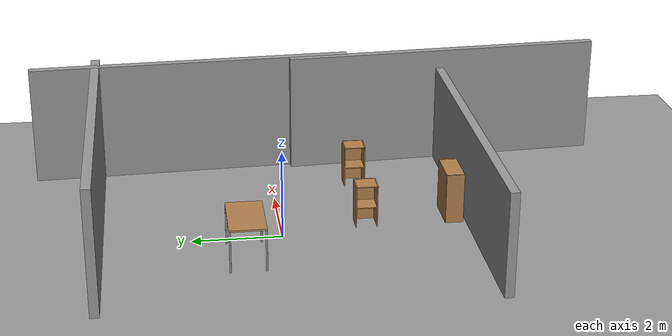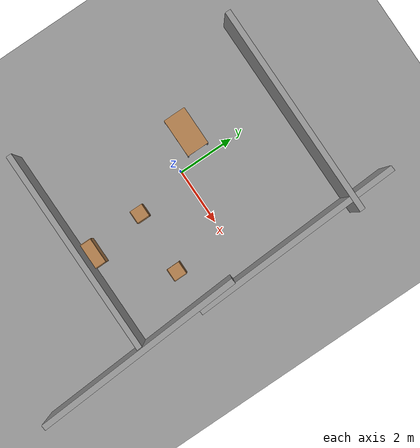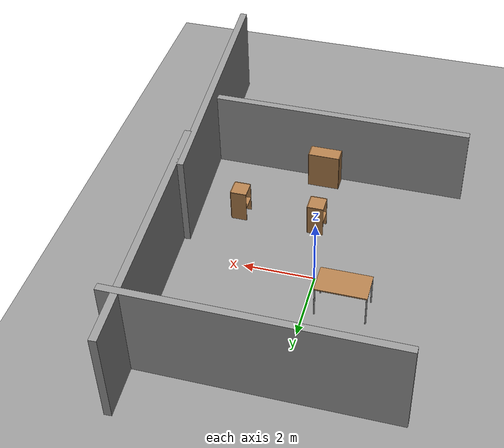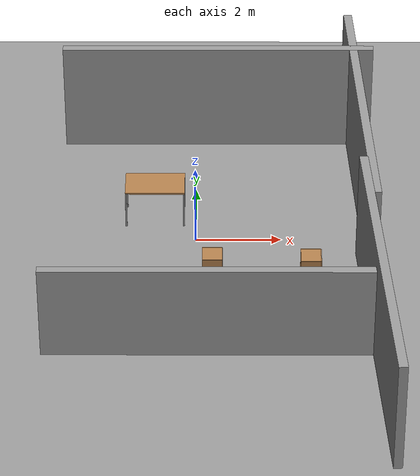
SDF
<sdf version="1.6">
 <world name="default">
  <model name="ground_plane">
   <static>1</static>
   <link name="link">
    <collision name="collision">
     <geometry><plane><normal>0 0 1</normal><size>100 100</size></plane></geometry>
     <surface><friction><ode><mu>100</mu><mu2>50</mu2></ode></friction></surface>
    </collision>
    <visual name="visual">
     <cast_shadows>0</cast_shadows>
     <geometry><plane><normal>0 0 1</normal><size>100 100</size></plane></geometry>
     <material>
      <script><uri>file://media/materials/scripts/gazebo.material</uri><name>Gazebo/Grey</name></script>
     </material>
    </visual>
   </link>
  </model>
  <model name="cabinet_0">
   <static>1</static>
   <link name="cabinet_bottom_plate">
    <inertial>
     <pose>0 0 -1 0 -0 0</pose>
     <inertia><ixx>2.05</ixx><ixy>0</ixy><ixz>0</ixz><iyy>2.05</iyy><iyz>0</iyz><izz>2.05</izz></inertia>
     <mass>25</mass>
    </inertial>
    <collision name="cabinet_bottom_plate_geom">
     <pose>0 0 0.01 0 -0 0</pose>
     <geometry><box><size>0.45 0.45 0.02</size></box></geometry>
    </collision>
    <visual name="cabinet_bottom_plate_geom_visual">
     <pose>0 0 0.01 0 -0 0</pose>
     <geometry><box><size>0.45 0.45 0.02</size></box></geometry>
     <material>
      <script><uri>file://media/materials/scripts/gazebo.material</uri><name>Gazebo/Wood</name></script>
     </material>
    </visual>
    <collision name="cabinet_bottom_plate_geom_cabinet_back_plate">
     <pose>0.235 0 0.51 0 -0 0</pose>
     <geometry><box><size>0.02 0.45 1.02</size></box></geometry>
    </collision>
    <visual name="cabinet_bottom_plate_geom_cabinet_back_plate_visual">
     <pose>0.235 0 0.51 0 -0 0</pose>
     <geometry><box><size>0.02 0.45 1.02</size></box></geometry>
     <material>
      <script><uri>file://media/materials/scripts/gazebo.material</uri><name>Gazebo/Wood</name></script>
     </material>
    </visual>
    <collision name="cabinet_bottom_plate_geom_cabinet_left_plate">
     <pose>0 0.235 0.51 0 -0 0</pose>
     <geometry><box><size>0.45 0.02 1.02</size></box></geometry>
    </collision>
    <visual name="cabinet_bottom_plate_geom_cabinet_left_plate_visual">
     <pose>0 0.235 0.51 0 -0 0</pose>
     <geometry><box><size>0.45 0.02 1.02</size></box></geometry>
     <material>
      <script><uri>file://media/materials/scripts/gazebo.material</uri><name>Gazebo/Wood</name></script>
     </material>
    </visual>
    <collision name="cabinet_bottom_plate_geom_cabinet_middle_plate">
     <pose>0 0 0.51 0 -0 0</pose>
     <geometry><box><size>0.45 0.45 0.02</size></box></geometry>
    </collision>
    <visual name="cabinet_bottom_plate_geom_cabinet_middle_plate_visual">
     <pose>0 0 0.51 0 -0 0</pose>
     <geometry><box><size>0.45 0.45 0.02</size></box></geometry>
     <material>
      <script><uri>file://media/materials/scripts/gazebo.material</uri><name>Gazebo/Wood</name></script>
     </material>
    </visual>
    <collision name="cabinet_bottom_plate_geom_cabinet_right_plate">
     <pose>0 -0.235 0.51 0 -0 0</pose>
     <geometry><box><size>0.45 0.02 1.02</size></box></geometry>
    </collision>
    <visual name="cabinet_bottom_plate_geom_cabinet_right_plate_visual">
     <pose>0 -0.235 0.51 0 -0 0</pose>
     <geometry><box><size>0.45 0.02 1.02</size></box></geometry>
     <material>
      <script><uri>file://media/materials/scripts/gazebo.material</uri><name>Gazebo/Wood</name></script>
     </material>
    </visual>
    <collision name="cabinet_bottom_plate_geom_cabinet_top_plate">
     <pose>0 0 1.01 0 -0 0</pose>
     <geometry><box><size>0.45 0.45 0.02</size></box></geometry>
    </collision>
    <visual name="cabinet_bottom_plate_geom_cabinet_top_plate_visual">
     <pose>0 0 1.01 0 -0 0</pose>
     <geometry><box><size>0.45 0.45 0.02</size></box></geometry>
     <material>
      <script><uri>file://media/materials/scripts/gazebo.material</uri><name>Gazebo/Wood</name></script>
     </material>
    </visual>
   </link>
   <pose>0.387504 -1.88402 0 0 -0 0</pose>
  </model>
  <model name="grey_wall">
   <static>1</static>
   <link name="link">
    <pose>0 0 1.4 0 -0 0</pose>
    <collision name="collision"><geometry><box><size>7.5 0.2 2.8</size></box></geometry></collision>
    <visual name="visual">
     <cast_shadows>0</cast_shadows>
     <geometry><box><size>7.5 0.2 2.8</size></box></geometry>
     <material>
      <script>
       <uri>model://grey_wall/materials/scripts</uri>
       <uri>model://grey_wall/materials/textures</uri>
       <name>vrc/grey_wall</name>
      </script>
     </material>
    </visual>
   </link>
   <pose>0.515244 4.00416 0 0 -0 0</pose>
  </model>
  <model name="grey_wall_0">
   <static>1</static>
   <link name="link">
    <pose>0 0 1.4 0 -0 0</pose>
    <collision name="collision"><geometry><box><size>7.5 0.2 2.8</size></box></geometry></collision>
    <visual name="visual">
     <cast_shadows>0</cast_shadows>
     <geometry><box><size>7.5 0.2 2.8</size></box></geometry>
     <material>
      <script>
       <uri>model://grey_wall/materials/scripts</uri>
       <uri>model://grey_wall/materials/textures</uri>
       <name>vrc/grey_wall</name>
      </script>
     </material>
    </visual>
   </link>
   <pose>0.342885 -4.22101 -0.442032 0 -0 0</pose>
  </model>
  <model name="ground_plane_0">
   <static>1</static>
   <link name="link">
    <collision name="collision">
     <geometry><plane><normal>0 0 1</normal><size>100 100</size></plane></geometry>
     <surface><friction><ode><mu>100</mu><mu2>50</mu2></ode></friction></surface>
    </collision>
    <visual name="visual">
     <cast_shadows>0</cast_shadows>
     <geometry><plane><normal>0 0 1</normal><size>100 100</size></plane></geometry>
     <material>
      <script><uri>file://media/materials/scripts/gazebo.material</uri><name>Gazebo/Grey</name></script>
     </material>
    </visual>
   </link>
   <pose>-1.06215 -4.46705 0 0 -0 0</pose>
  </model>
  <model name="grey_wall_2">
   <static>1</static>
   <link name="link">
    <pose>0 0 1.4 0 -0 0</pose>
    <collision name="collision"><geometry><box><size>7.5 0.2 2.8</size></box></geometry></collision>
    <visual name="visual">
     <cast_shadows>0</cast_shadows>
     <geometry><box><size>7.5 0.2 2.8</size></box></geometry>
     <material>
      <script>
       <uri>model://grey_wall/materials/scripts</uri>
       <uri>model://grey_wall/materials/textures</uri>
       <name>vrc/grey_wall</name>
      </script>
     </material>
    </visual>
   </link>
   <pose>4.06384 -4.30709 0 0 -0 1.63339</pose>
  </model>
  <model name="cabinet_1">
   <static>1</static>
   <link name="cabinet_bottom_plate">
    <inertial>
     <pose>0 0 -1 0 -0 0</pose>
     <inertia><ixx>2.05</ixx><ixy>0</ixy><ixz>0</ixz><iyy>2.05</iyy><iyz>0</iyz><izz>2.05</izz></inertia>
     <mass>25</mass>
    </inertial>
    <collision name="cabinet_bottom_plate_geom">
     <pose>0 0 0.01 0 -0 0</pose>
     <geometry><box><size>0.45 0.45 0.02</size></box></geometry>
    </collision>
    <visual name="cabinet_bottom_plate_geom_visual">
     <pose>0 0 0.01 0 -0 0</pose>
     <geometry><box><size>0.45 0.45 0.02</size></box></geometry>
     <material>
      <script><uri>file://media/materials/scripts/gazebo.material</uri><name>Gazebo/Wood</name></script>
     </material>
    </visual>
    <collision name="cabinet_bottom_plate_geom_cabinet_back_plate">
     <pose>0.235 0 0.51 0 -0 0</pose>
     <geometry><box><size>0.02 0.45 1.02</size></box></geometry>
    </collision>
    <visual name="cabinet_bottom_plate_geom_cabinet_back_plate_visual">
     <pose>0.235 0 0.51 0 -0 0</pose>
     <geometry><box><size>0.02 0.45 1.02</size></box></geometry>
     <material>
      <script><uri>file://media/materials/scripts/gazebo.material</uri><name>Gazebo/Wood</name></script>
     </material>
    </visual>
    <collision name="cabinet_bottom_plate_geom_cabinet_left_plate">
     <pose>0 0.235 0.51 0 -0 0</pose>
     <geometry><box><size>0.45 0.02 1.02</size></box></geometry>
    </collision>
    <visual name="cabinet_bottom_plate_geom_cabinet_left_plate_visual">
     <pose>0 0.235 0.51 0 -0 0</pose>
     <geometry><box><size>0.45 0.02 1.02</size></box></geometry>
     <material>
      <script><uri>file://media/materials/scripts/gazebo.material</uri><name>Gazebo/Wood</name></script>
     </material>
    </visual>
    <collision name="cabinet_bottom_plate_geom_cabinet_middle_plate">
     <pose>0 0 0.51 0 -0 0</pose>
     <geometry><box><size>0.45 0.45 0.02</size></box></geometry>
    </collision>
    <visual name="cabinet_bottom_plate_geom_cabinet_middle_plate_visual">
     <pose>0 0 0.51 0 -0 0</pose>
     <geometry><box><size>0.45 0.45 0.02</size></box></geometry>
     <material>
      <script><uri>file://media/materials/scripts/gazebo.material</uri><name>Gazebo/Wood</name></script>
     </material>
    </visual>
    <collision name="cabinet_bottom_plate_geom_cabinet_right_plate">
     <pose>0 -0.235 0.51 0 -0 0</pose>
     <geometry><box><size>0.45 0.02 1.02</size></box></geometry>
    </collision>
    <visual name="cabinet_bottom_plate_geom_cabinet_right_plate_visual">
     <pose>0 -0.235 0.51 0 -0 0</pose>
     <geometry><box><size>0.45 0.02 1.02</size></box></geometry>
     <material>
      <script><uri>file://media/materials/scripts/gazebo.material</uri><name>Gazebo/Wood</name></script>
     </material>
    </visual>
    <collision name="cabinet_bottom_plate_geom_cabinet_top_plate">
     <pose>0 0 1.01 0 -0 0</pose>
     <geometry><box><size>0.45 0.45 0.02</size></box></geometry>
    </collision>
    <visual name="cabinet_bottom_plate_geom_cabinet_top_plate_visual">
     <pose>0 0 1.01 0 -0 0</pose>
     <geometry><box><size>0.45 0.45 0.02</size></box></geometry>
     <material>
      <script><uri>file://media/materials/scripts/gazebo.material</uri><name>Gazebo/Wood</name></script>
     </material>
    </visual>
   </link>
   <pose>2.63082 -1.9376 0 0 -0 0</pose>
  </model>
  <model name="grey_wall_5">
   <static>1</static>
   <link name="link">
    <pose>0 0 1.4 0 -0 0</pose>
    <collision name="collision"><geometry><box><size>7.5 0.2 2.8</size></box></geometry></collision>
    <visual name="visual">
     <cast_shadows>0</cast_shadows>
     <geometry><box><size>7.5 0.2 2.8</size></box></geometry>
     <material>
      <script>
       <uri>model://grey_wall/materials/scripts</uri>
       <uri>model://grey_wall/materials/textures</uri>
       <name>vrc/grey_wall</name>
      </script>
     </material>
    </visual>
   </link>
   <pose>3.88894 1.77909 0 0 -0 1.61945</pose>
  </model>
  <model name="table">
   <static>0</static>
   <link name="link">
    <collision name="surface">
     <pose>0 0 1 0 -0 0</pose>
     <geometry><box><size>1.5 0.8 0.03</size></box></geometry>
     <surface><friction><ode><mu>0.6</mu><mu2>0.6</mu2></ode></friction></surface>
    </collision>
    <visual name="visual1">
     <pose>0 0 1 0 -0 0</pose>
     <geometry><box><size>1.4 0.8 0.04</size></box></geometry>
     <material>
      <script><uri>file://media/materials/scripts/gazebo.material</uri><name>Gazebo/Wood</name></script>
     </material>
    </visual>
    <collision name="front_left_leg">
     <pose>0.68 0.38 0.5 0 -0 0</pose>
     <geometry><cylinder><radius>0.02</radius><length>1</length></cylinder></geometry>
    </collision>
    <visual name="front_left_leg">
     <pose>0.68 0.38 0.5 0 -0 0</pose>
     <geometry><cylinder><radius>0.02</radius><length>1</length></cylinder></geometry>
     <material>
      <script><uri>file://media/materials/scripts/gazebo.material</uri><name>Gazebo/Grey</name></script>
     </material>
    </visual>
    <collision name="front_right_leg">
     <pose>0.68 -0.38 0.5 0 -0 0</pose>
     <geometry><cylinder><radius>0.02</radius><length>1</length></cylinder></geometry>
    </collision>
    <visual name="front_right_leg">
     <pose>0.68 -0.38 0.5 0 -0 0</pose>
     <geometry><cylinder><radius>0.02</radius><length>1</length></cylinder></geometry>
     <material>
      <script><uri>file://media/materials/scripts/gazebo.material</uri><name>Gazebo/Grey</name></script>
     </material>
    </visual>
    <collision name="back_right_leg">
     <pose>-0.68 -0.38 0.5 0 -0 0</pose>
     <geometry><cylinder><radius>0.02</radius><length>1</length></cylinder></geometry>
    </collision>
    <visual name="back_right_leg">
     <pose>-0.68 -0.38 0.5 0 -0 0</pose>
     <geometry><cylinder><radius>0.02</radius><length>1</length></cylinder></geometry>
     <material>
      <script><uri>file://media/materials/scripts/gazebo.material</uri><name>Gazebo/Grey</name></script>
     </material>
    </visual>
    <collision name="back_left_leg">
     <pose>-0.68 0.38 0.5 0 -0 0</pose>
     <geometry><cylinder><radius>0.02</radius><length>1</length></cylinder></geometry>
    </collision>
    <visual name="back_left_leg">
     <pose>-0.68 0.38 0.5 0 -0 0</pose>
     <geometry><cylinder><radius>0.02</radius><length>1</length></cylinder></geometry>
     <material>
      <script><uri>file://media/materials/scripts/gazebo.material</uri><name>Gazebo/Grey</name></script>
     </material>
    </visual>
    <inertial>
     <inertia><ixx>1</ixx><ixy>0</ixy><ixz>0</ixz><iyy>1</iyy><iyz>0</iyz><izz>1</izz></inertia>
     <mass>1</mass>
    </inertial>
   </link>
   <pose>-0.963442 0.869458 -9e-06 0 -1e-06 0</pose>
  </model>
  <model name="bookshelf_0">
   <static>1</static>
   <link name="link">
    <inertial><mass>1</mass></inertial>
    <collision name="back">
     <pose>0 0.005 0.6 0 -0 0</pose>
     <geometry><box><size>0.9 0.01 1.2</size></box></geometry>
    </collision>
    <visual name="visual1">
     <pose>0 0.005 0.6 0 -0 0</pose>
     <geometry><box><size>0.9 0.01 1.2</size></box></geometry>
     <material>
      <script><uri>file://media/materials/scripts/gazebo.material</uri><name>Gazebo/Wood</name></script>
     </material>
    </visual>
    <collision name="left_side">
     <pose>0.45 -0.195 0.6 0 -0 0</pose>
     <geometry><box><size>0.02 0.4 1.2</size></box></geometry>
    </collision>
    <visual name="visual2">
     <pose>0.45 -0.195 0.6 0 -0 0</pose>
     <geometry><box><size>0.02 0.4 1.2</size></box></geometry>
     <material>
      <script><uri>file://media/materials/scripts/gazebo.material</uri><name>Gazebo/Wood</name></script>
     </material>
    </visual>
    <collision name="right_side">
     <pose>-0.45 -0.195 0.6 0 -0 0</pose>
     <geometry><box><size>0.02 0.4 1.2</size></box></geometry>
    </collision>
    <visual name="visual3">
     <pose>-0.45 -0.195 0.6 0 -0 0</pose>
     <geometry><box><size>0.02 0.4 1.2</size></box></geometry>
     <material>
      <script><uri>file://media/materials/scripts/gazebo.material</uri><name>Gazebo/Wood</name></script>
     </material>
    </visual>
    <collision name="bottom">
     <pose>0 -0.195 0.03 0 -0 0</pose>
     <geometry><box><size>0.88 0.4 0.06</size></box></geometry>
    </collision>
    <visual name="visual4">
     <pose>0 -0.195 0.03 0 -0 0</pose>
     <geometry><box><size>0.88 0.4 0.06</size></box></geometry>
     <material>
      <script><uri>file://media/materials/scripts/gazebo.material</uri><name>Gazebo/Wood</name></script>
     </material>
    </visual>
    <collision name="top">
     <pose>0 -0.195 1.19 0 -0 0</pose>
     <geometry><box><size>0.88 0.4 0.02</size></box></geometry>
    </collision>
    <visual name="visual5">
     <pose>0 -0.195 1.19 0 -0 0</pose>
     <geometry><box><size>0.88 0.4 0.02</size></box></geometry>
     <material>
      <script><uri>file://media/materials/scripts/gazebo.material</uri><name>Gazebo/Wood</name></script>
     </material>
    </visual>
    <collision name="low_shelf">
     <pose>0 -0.195 0.43 0 -0 0</pose>
     <geometry><box><size>0.88 0.4 0.02</size></box></geometry>
    </collision>
    <visual name="visual6">
     <pose>0 -0.195 0.43 0 -0 0</pose>
     <geometry><box><size>0.88 0.4 0.02</size></box></geometry>
     <material>
      <script><uri>file://media/materials/scripts/gazebo.material</uri><name>Gazebo/Wood</name></script>
     </material>
    </visual>
    <collision name="high_shelf">
     <pose>0 -0.195 0.8 0 -0 0</pose>
     <geometry><box><size>0.88 0.4 0.02</size></box></geometry>
    </collision>
    <visual name="visual7">
     <pose>0 -0.195 0.8 0 -0 0</pose>
     <geometry><box><size>0.88 0.4 0.02</size></box></geometry>
     <material>
      <script><uri>file://media/materials/scripts/gazebo.material</uri><name>Gazebo/Wood</name></script>
     </material>
    </visual>
   </link>
   <pose>0.622498 -3.66291 0 0 -0 0</pose>
  </model>
 </world>
</sdf>
